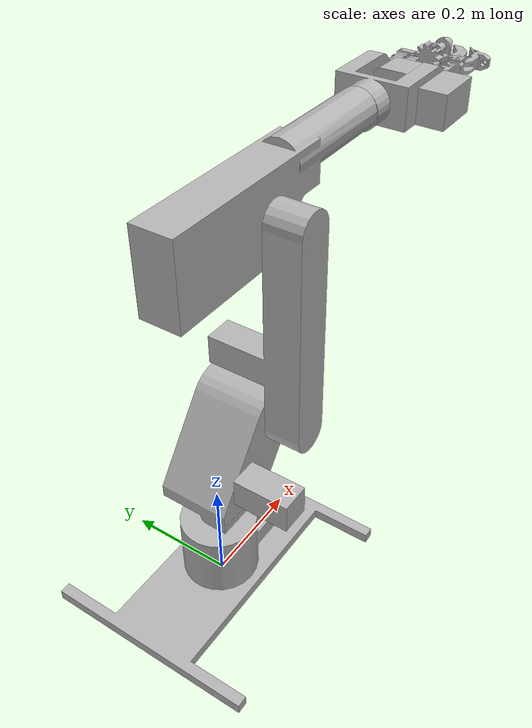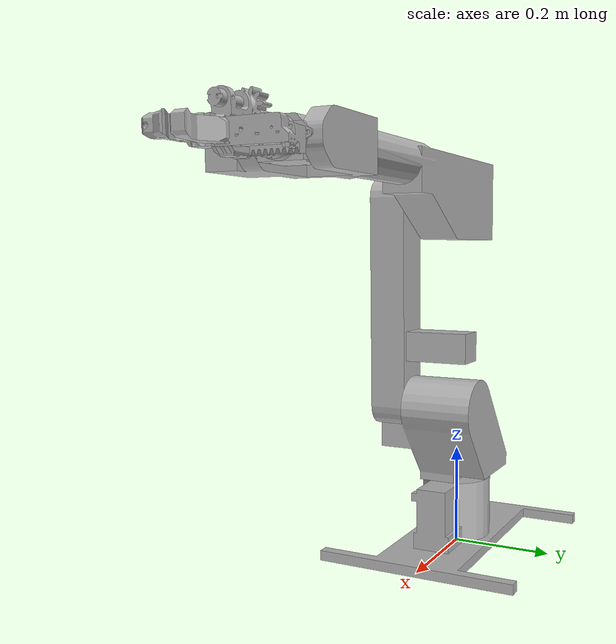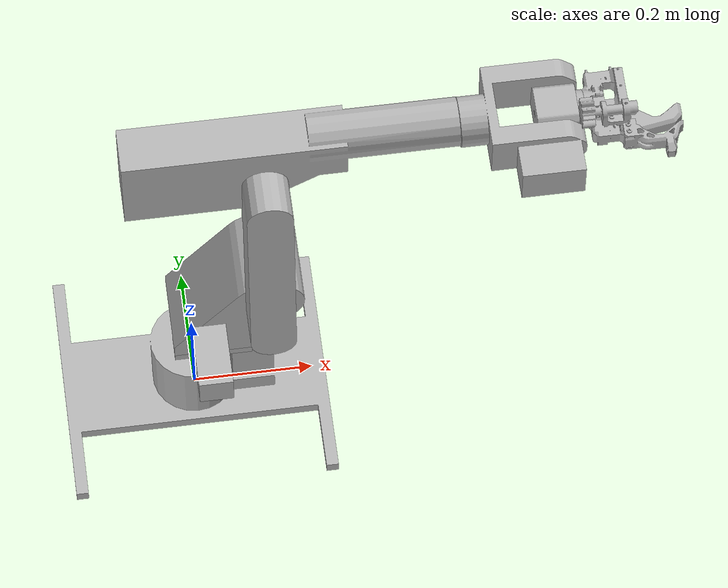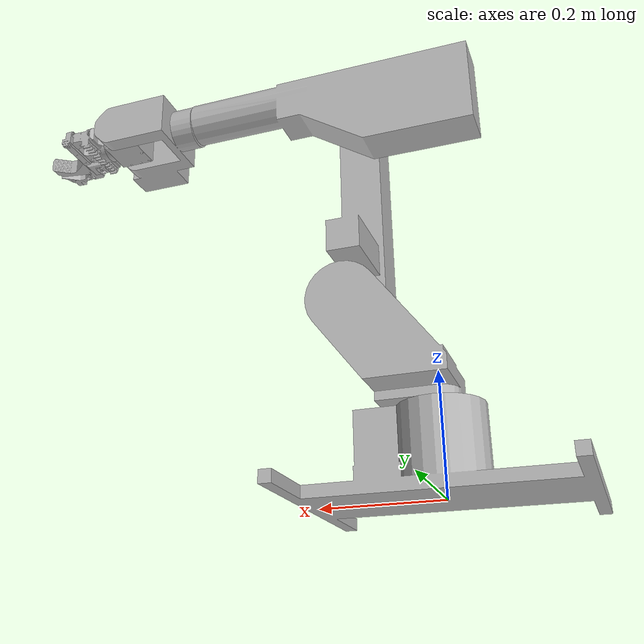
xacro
<?xml version="1.0"?>
<robot name="emu" xmlns:xacro="http://www.ros.org/wiki/xacro">
     <gazebo>
        <plugin name="gazebo_ros_control" filename="libgazebo_ros_control.so">
            <robotNamespace>/emu</robotNamespace>
        </plugin>
    </gazebo>
    <xacro:include filename="$(find emu_description)/urdf/emu.gazebo"/>
    <xacro:include filename="$(find emu_description)/urdf/camera.xacro"/>

    <xacro:emu_cam parent = "link_4" offset_from_parent = "0.0 0.109 0.444 " rotate_from_parent = "0 0 1.57075"/>

<!--=================== LINKS ========================-->

    <link name="base_link">
        <collision>
			<origin xyz="0 0 0"/>
			<geometry>
				<mesh filename="package://emu_description/meshes/collision/Base_link_c.STL" scale="1 1 1"/>
			</geometry>
		</collision>
        <visual>
            <geometry>
                <mesh filename="package://emu_description/meshes/Base_link.STL" scale="1 1 1"/>
            </geometry>
            <material name="Grey">
                <color rgba="0.7 0.7 0.7 1"/>
            </material>
        </visual>
    </link>

    <link name="link_1">
		<inertial>
            <origin xyz = "0.04462098 -0.02110293 0.20827883"/>
			<mass value = "6.67642390"/>
            <inertia ixx = "0.05879639" iyy = "0.06029628" izz = "0.03519299" ixy = "0.00412696" ixz = "0.01915494" iyz = "-0.00070895"/>
		</inertial>
        <collision>
			<origin xyz="0 0 0"/>
			<geometry>
				<mesh filename="package://emu_description/meshes/collision/Link1_c.STL" scale="1 1 1"/>
			</geometry>
		</collision>
        <visual>
            <geometry>
                <mesh filename="package://emu_description/meshes/Link1.STL" scale="1 1 1"/>
            </geometry>
            <origin rpy="1.57075 0 0" xyz = "0.12596 0 0.30767"/>
            <material name="Grey">
                <color rgba="0.7 0.7 0.7 1"/>
            </material>
        </visual>
    </link>

    <link name="link_2">
		<inertial>
			<origin xyz = "-0.00010812 0.09578956 0.01003609"/>
			<mass value = "5.43224826"/>
			<inertia ixx = "0.07858891" iyy = "0.01308430" izz = "0.06958558" ixy = "-0.00005089" ixz = "-0.00003323" iyz = "0.01045852"/>
		</inertial>
        <collision>
			<origin xyz="0 0 0"/>
			<geometry>
				<mesh filename="package://emu_description/meshes/collision/Link2_c.STL" scale="1 1 1"/>
			</geometry>
		</collision>
        <visual>
            <geometry>
                <mesh filename="package://emu_description/meshes/Link2.STL" scale="1 1 1"/>
            </geometry>
            <origin rpy="0 0 1.57075" xyz = "0 0.4 0"/>
            <material name="Grey">
                <color rgba="0.7 0.7 0.7 1"/>
            </material>
        </visual>
    </link>

    <link name="link_3">
		<inertial>
			<origin xyz = "0.01157144 0.05910683 0.00781579"/>
			<mass value = "4.46265173"/>
			<inertia ixx = "0.09737261" iyy = "0.01098583" izz = "0.10341164" ixy = "-0.01155842" ixz = "-0.00013064" iyz = "-0.00161986"/>
		</inertial>
        <collision>
			<origin xyz="0 0 0"/>
			<geometry>
				<mesh filename="package://emu_description/meshes/collision/Link3_c.STL" scale="1 1 1"/>
			</geometry>
		</collision>
        <visual>
            <geometry>
                <mesh filename="package://emu_description/meshes/Link3.STL" scale="1 1 1"/>
            </geometry>
            <origin rpy="1.57075 0 0" xyz = "0.05 0 0"/>
            <material name="Grey">
                <color rgba="0.7 0.7 0.7 1"/>
            </material>
        </visual>
    </link>

    <link name="link_4">
		<inertial>
			<origin xyz = "-0.00169590 0.01339008 0.39616334"/>
			<mass value = "1.17365091"/>
			<inertia ixx = "0.00585017" iyy = "0.00363604" izz = "0.00356846" ixy = " -0.00019968" ixz = "-0.00009573" iyz = "0.00079386"/>
		</inertial>
        <collision>
			<origin xyz="0 0 0"/>
			<geometry>
				<mesh filename="package://emu_description/meshes/collision/Link4_c.STL" scale="1 1 1"/>
			</geometry>
		</collision>
        <visual>
            <geometry>
                <mesh filename="package://emu_description/meshes/Link4.STL" scale="1 1 1"/>
            </geometry>
            <origin rpy="-1.57075 0 0" xyz = "0 0 0.466"/>
            <material name="Grey">
                <color rgba="0.7 0.7 0.7 1"/>
            </material>
        </visual>
    </link>

    <link name="link_5">
		<inertial>
			<origin xyz = "0 0 0"/>
			<mass value = "0.51"/>
			<inertia ixx = "0" iyy = "0" izz = "0" ixy = "0" ixz = "0" iyz = "0"/>
		</inertial>
        <collision>
			<origin xyz="0 0 0"/>
			<geometry>
				<mesh filename="package://emu_description/meshes/collision/Link5_c.STL" scale="1 1 1"/>
			</geometry>
		</collision>
        <visual>
            <geometry>
                <mesh filename="package://emu_description/meshes/Link5.STL" scale="1 1 1"/>
            </geometry>
            <origin rpy="1.57075 0 0" xyz = "0 0 0"/>
            <material name="Grey">
                <color rgba="0.7 0.7 0.7 1"/>
            </material>
        </visual>
    </link>

    <link name="link_6">
		<inertial>
			<origin xyz = "-0.00016738 0 0.04413320"/>
			<mass value = "0.43864195"/>
			<inertia ixx = "0.00049965" iyy = "0.00043225" izz = "0.00020871" ixy = "0" ixz = "-0.00000204" iyz = "0"/>
		</inertial>
        <collision>
			<origin xyz="0 0 0"/>
			<geometry>
				<mesh filename="package://emu_description/meshes/Link6.STL" scale="1 1 1"/>
			</geometry>
		</collision>
        <visual>
            <geometry>
                <mesh filename="package://emu_description/meshes/Link6.STL" scale="1 1 1"/>
            </geometry>
            <material name="Grey">
                <color rgba="0.7 0.7 0.7 1"/>
            </material>
        </visual>
    </link>

    <link name="tool_base">
		<inertial>
			<origin xyz = "-0.00016738 0 0.04413320"/>
			<mass value = "0.43864195"/>
			<inertia ixx = "0.00049965" iyy = "0.00043225" izz = "0.00020871" ixy = "0" ixz = "-0.00000204" iyz = "0"/>
		</inertial>
        <collision>
			<origin xyz="0 0 0"/>
			<geometry>
				<mesh filename="package://emu_description/meshes/tool_static.dae" scale="1 1 1"/>
			</geometry>
		</collision>
        <visual>
            <geometry>
                <mesh filename="package://emu_description/meshes/tool_static.dae" scale="1 1 1"/>
            </geometry>
            <material name="Grey">
                <color rgba="0.7 0.7 0.7 1"/>
            </material>
        </visual>
    </link>

    <link name="sliding_jaw">
        <collision>
			<origin xyz="0 0 0"/>
			<geometry>
				<mesh filename="package://emu_description/meshes/tool_sliding.dae" scale="1 1 1"/>
			</geometry>
		</collision>
        <visual>
            <geometry>
                <mesh filename="package://emu_description/meshes/tool_sliding.dae" scale="1 1 1"/>
            </geometry>
            <material name="Grey">
                <color rgba="0.7 0.7 0.7 1"/>
            </material>
        </visual>
    </link>

    <link name="grasp_frame"/>

    <link name="suction_frame"/>
<!--=================== JOINTS ========================-->

    <joint name="joint_1" type="revolute">
        <parent link="base_link"/>
        <child link="link_1"/>
        <axis xyz = "0 0 1"/>
        <limit lower = "-3.1066" upper = "3.1066" effort = "1000" velocity = "2.5" acceleration = "1"/>
        <dynamics damping="0.1"/>
    </joint>

    <joint name="joint_2" type="revolute">
        <parent link="link_1"/>
        <child link="link_2"/>
        <axis xyz = "0 0 1"/>
        <limit lower = "-2.917" upper = "1.703" effort = "1000" velocity = "1.5" acceleration = "1"/>
        <origin rpy="1.57075 0 0" xyz = "0.12596 0 0.30767"/>
        <dynamics damping="0.1"/>
    </joint>

    <joint name="joint_3" type="revolute">
        <parent link="link_2"/>
        <child link="link_3"/>
        <axis xyz = "0 0 1"/>
        <limit lower = "-1.4312" upper = "1.6" effort = "1000" velocity = "2.5" acceleration = "1"/>
        <origin rpy="0 0 1.57075" xyz = "0 0.4 0"/>
        <dynamics damping="0.1"/>
    </joint>

    <joint name="joint_4" type="revolute">
        <parent link="link_3"/>
        <child link="link_4"/>
        <axis xyz = "0 0 1"/>
        <limit lower = "-3.1067" upper = "3.1067" effort = "1000" velocity = "1.5" acceleration = "2"/>
        <origin rpy="1.57075 0 0" xyz = "0.05 0 0"/>
        <dynamics damping="0.03"/>
    </joint>

    <joint name="joint_5" type="revolute">
        <parent link="link_4"/>
        <child link="link_5"/>
        <axis xyz = "0 0 1"/>
        <limit lower = "-3.1067" upper = "3.1067" effort = "1000" velocity = "2" acceleration = "2"/>
        <origin rpy="-1.57075 0 0" xyz = "0 0 0.466"/>
        <dynamics damping="0.01"/>
    </joint>

    <joint name="joint_6" type="revolute">
        <parent link="link_5"/>
        <child link="link_6"/>
        <axis xyz = "0 0 1"/>
        <limit lower = "-3.1067" upper = "3.1067" effort = "50" velocity = "2" acceleration = "2"/>
        <origin rpy="1.57075 0 0" xyz = "0 -0.043 0"/>
        <dynamics damping="0"/>
    </joint>

    <joint name="joint_6_to_tool_base" type="fixed">
        <parent link="link_6"/>
        <child link="tool_base"/>
        <origin rpy="0 0 0" xyz = "0 0 0"/>
    </joint>

    <joint name="sliding_jaw_joint" type="prismatic">
        <parent link="tool_base"/>
        <child link="sliding_jaw"/>
        <axis xyz = "0 0 1"/>
        <limit lower = "0" upper = "0.0715" effort = "10" velocity = "5" acceleration = "10"/>
        <origin rpy="1.57075 0 0" xyz = "0 0.0178 0.1095"/>
    </joint>

    <joint name="grasp_frame_transform" type="fixed">
        <parent link="tool_base"/>
        <child link="grasp_frame"/>
        <axis xyz = "0 0 1"/>
        <origin rpy="0 0 0" xyz = "0 -0.033 0.1095"/>
    </joint>

    <joint name="suction_frame_transform" type="fixed">
        <parent link="tool_base"/>
        <child link="suction_frame"/>
        <axis xyz = "0 0 1"/>
        <origin rpy="0 0 0" xyz = "0 -0.0923 0.1492"/>
    </joint>

    <transmission name="tran1">
        <type>transmission_interface/SimpleTransmission</type>
        <joint name="joint_1">
            <hardwareInterface>hardware_interface/EffortJointInterface</hardwareInterface>
        </joint>
        <actuator name="motor1">
            <hardwareInterface>hardware_interface/EffortJointInterface</hardwareInterface>
            <mechanicalReduction>1</mechanicalReduction>
        </actuator>
    </transmission>

    <transmission name="tran2">
        <type>transmission_interface/SimpleTransmission</type>
        <joint name="joint_2">
            <hardwareInterface>hardware_interface/EffortJointInterface</hardwareInterface>
        </joint>
        <actuator name="motor2">
            <hardwareInterface>hardware_interface/EffortJointInterface</hardwareInterface>
            <mechanicalReduction>1</mechanicalReduction>
        </actuator>
    </transmission>

    <transmission name="tran3">
        <type>transmission_interface/SimpleTransmission</type>
        <joint name="joint_3">
            <hardwareInterface>hardware_interface/EffortJointInterface</hardwareInterface>
        </joint>
        <actuator name="motor3">
            <hardwareInterface>hardware_interface/EffortJointInterface</hardwareInterface>
            <mechanicalReduction>1</mechanicalReduction>
        </actuator>
    </transmission>

    <transmission name="tran4">
        <type>transmission_interface/SimpleTransmission</type>
        <joint name="joint_4">
            <hardwareInterface>hardware_interface/EffortJointInterface</hardwareInterface>
        </joint>
        <actuator name="motor4">
            <hardwareInterface>hardware_interface/EffortJointInterface</hardwareInterface>
            <mechanicalReduction>1</mechanicalReduction>
        </actuator>
    </transmission>

    <transmission name="tran5">
        <type>transmission_interface/SimpleTransmission</type>
        <joint name="joint_5">
            <hardwareInterface>hardware_interface/EffortJointInterface</hardwareInterface>
        </joint>
        <actuator name="motor5">
            <hardwareInterface>hardware_interface/EffortJointInterface</hardwareInterface>
            <mechanicalReduction>1</mechanicalReduction>
        </actuator>
    </transmission>

    <transmission name="tran6">
        <type>transmission_interface/SimpleTransmission</type>
        <joint name="joint_6">
            <hardwareInterface>hardware_interface/EffortJointInterface</hardwareInterface>
        </joint>
        <actuator name="motor6">
            <hardwareInterface>hardware_interface/EffortJointInterface</hardwareInterface>
            <mechanicalReduction>1</mechanicalReduction>
        </actuator>
    </transmission>

</robot>

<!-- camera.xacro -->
<robot name="emu_cam" xmlns:xacro="http://www.ros.org/wiki/xacro">

    <xacro:macro name="emu_cam" params="parent offset_from_parent rotate_from_parent">
        <joint name="camera_joint" type="fixed">
            <origin xyz="${offset_from_parent}" rpy="${rotate_from_parent}"/>
            <parent link="${parent}"/>
            <child link="camera_link"/>
        </joint>

        <!-- Camera -->
        <link name="camera_link">
            <collision>
                <origin xyz="0 0 0" rpy="0 0 0"/>
                <geometry>
                    <box size="0.01 0.01 0.01"/>
                </geometry>
            </collision>

            <visual>
                <origin xyz="0 0 0" rpy="0 0 0"/>
                <geometry>
                    <box size = "0.01 0.01 0.01"/>
                </geometry>
            </visual>

            <inertial>
                <mass value="1e-5" />
                <origin xyz="0 0 0" rpy="0 0 0"/>
                <inertia ixx="1e-6" ixy="0" ixz="0" iyy="1e-6" iyz="0" izz="1e-6" />
            </inertial>
        </link>

        <gazebo reference="camera_link">
            <material>Gazebo/Black</material>
            <sensor type="camera" name="camera1">
            <update_rate>60.0</update_rate>
            <camera name="emu_cam">
                <horizontal_fov>1.361</horizontal_fov>
                <image>
                    <width>1280</width>
                    <height>720</height>
                    <format>R8G8B8</format>
                </image>
                <clip>
                    <near>0.01</near>
                    <far>300</far>
                </clip>
                <noise>
                    <type>gaussian</type>
                    <mean>0.0</mean>
                    <stddev>0.007</stddev>
                </noise>
            </camera>
            <plugin name="camera_controller" filename="libgazebo_ros_camera.so">
                <alwaysOn>true</alwaysOn>
                <updateRate>0.0</updateRate>
                <cameraName>emu/camera</cameraName>
                <imageTopicName>image</imageTopicName>
                <cameraInfoTopicName>camera_info</cameraInfoTopicName>
                <frameName>camera_link</frameName>
                <hackBaseline>0.07</hackBaseline>
                <distortionK1>0.0</distortionK1>
                <distortionK2>0.0</distortionK2>
                <distortionK3>0.0</distortionK3>
                <distortionT1>0.0</distortionT1>
                <distortionT2>0.0</distortionT2>
            </plugin>
            </sensor>
        </gazebo>

    </xacro:macro>
</robot>
